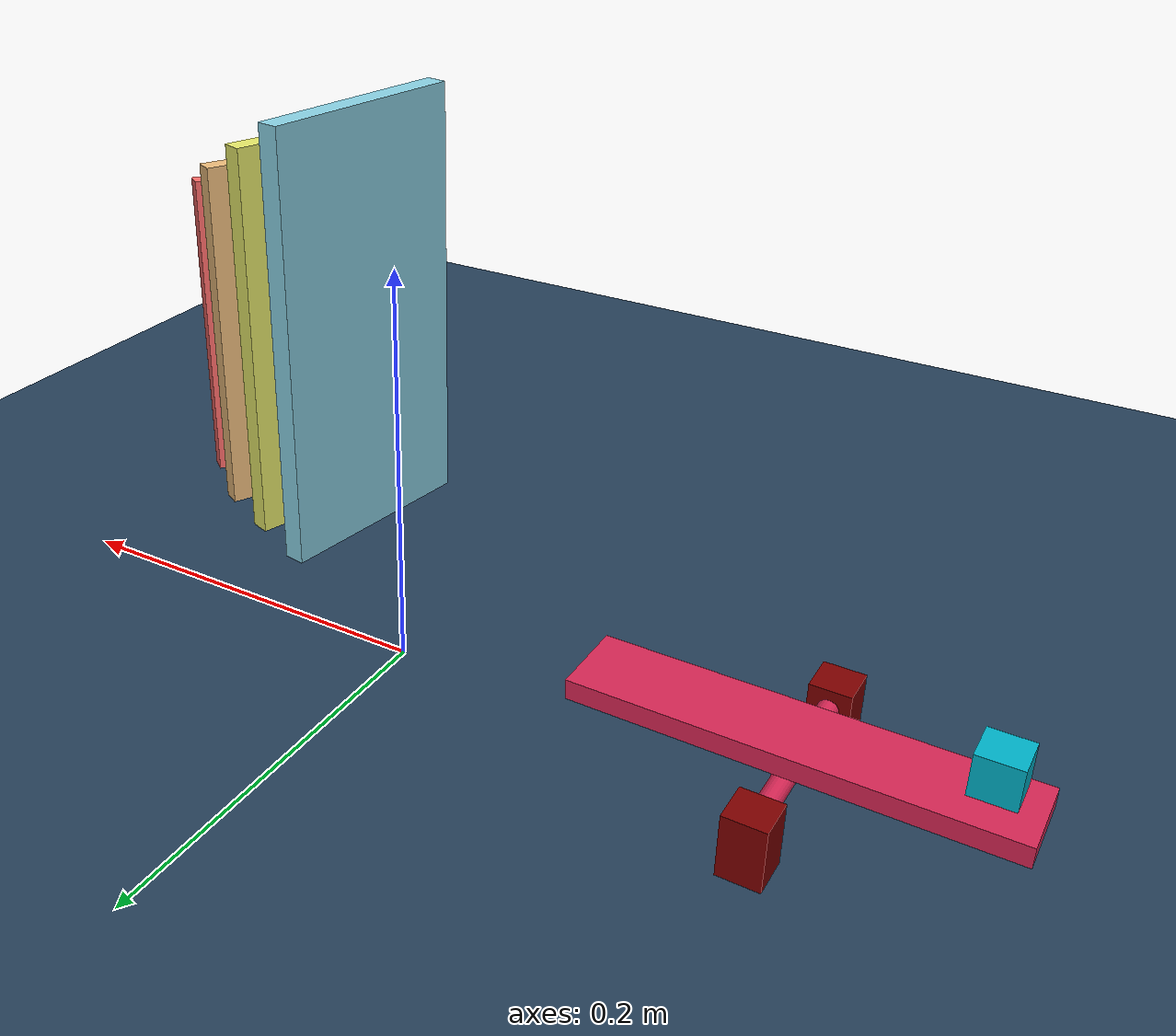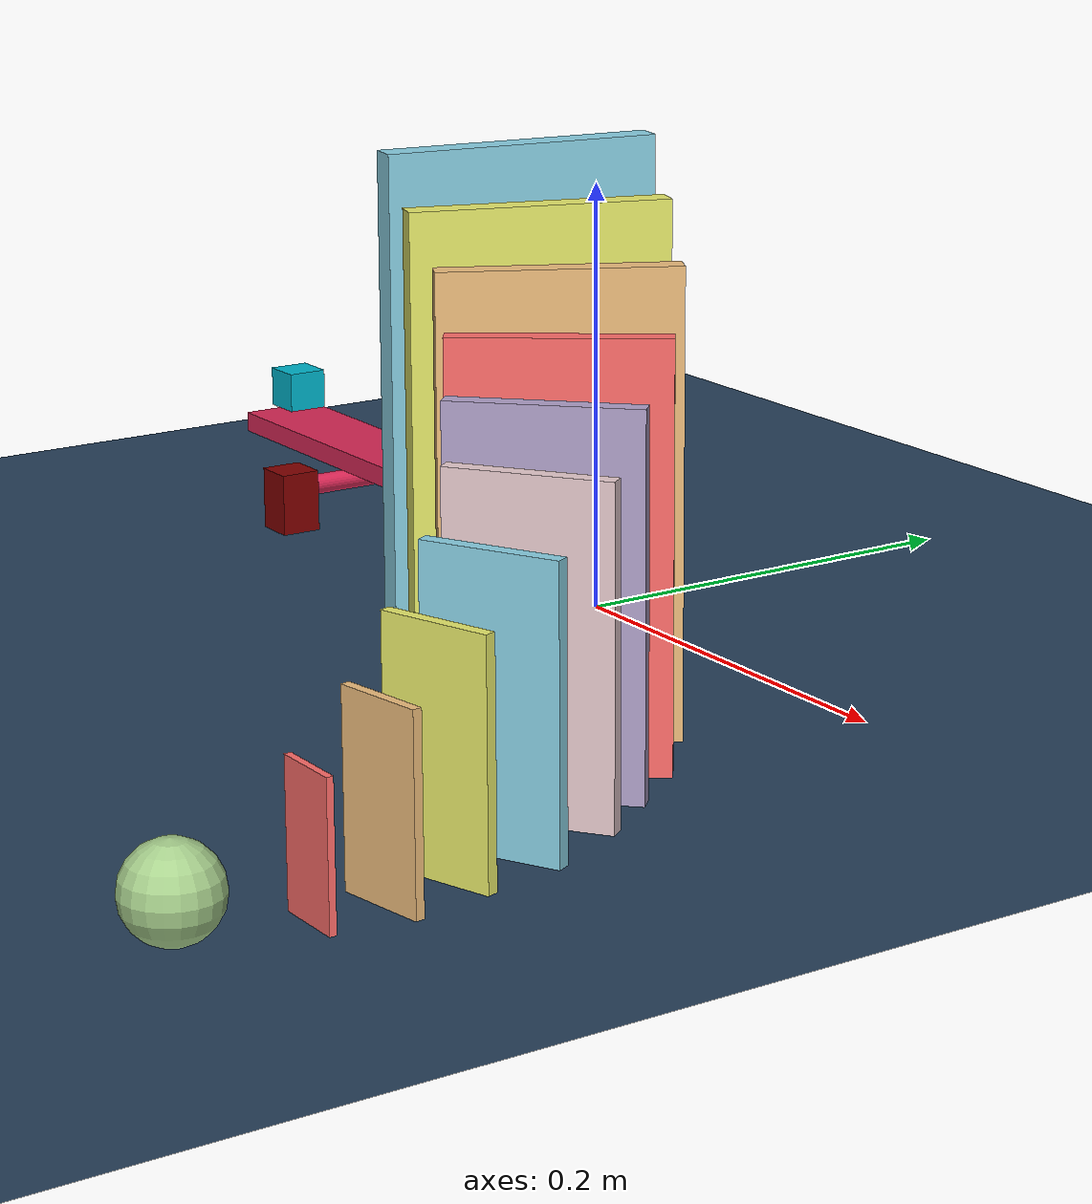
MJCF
<mujoco>
  <compiler meshdir="assets/meshes" texturedir="assets/textures" autolimits="true"/>

  <asset>
    <!-- light  -->
    <texture type="skybox" builtin="gradient" rgb1=".3 .5 .7" rgb2="0 0 0" width="32" height="512"/>
    <!-- floor  -->
    <texture  name="grid" type="2d" builtin="checker" width="512" height="512" rgb1=".1 .2 .3" rgb2=".2 .3 .4"/>
    <material name="grid" texture="grid" texrepeat="1 1" texuniform="true" reflectance=".2"/>

  </asset>

  <default>

        <!-- Domino -->
        <default class="domino">
          <geom   type="box"  friction="1" />
        </default>

        <!-- Ball -->
        <default class="seasaw_mount">
          <geom  type="box" size="0.01 0.01 0.03"/>
        </default>

        <!-- Ball -->
        <default class="ball">
          <geom   type="sphere"   />
        </default>

        <!-- Box -->
        <default class="Box">
          <geom   type="box"  friction="1" />
        </default>

  </default>

  <worldbody>
    <light name="spotlight" mode="targetbodycom" target="seasaw" diffuse=".8 .8 .8" specular="0.3 0.3 0.3" pos="0 -6 4" cutoff="30"/>
    <!-- floor  -->
    <geom  type="plane" size="3 3 .01" material="grid"/>
    <!-- camera  -->
    <body pos="0 0 1" >
      <camera name="traking_camera"  mode="targetbody"/>
    </body>

        <body pos="0.25 -0.35 0.02" euler="0 0 0">
          <joint type="free" />
          <geom class="ball" size="0.02" rgba="0.65625 0.8125 0.55078125 1"/>
        </body>

        <body pos="0.26 -0.3 0.03" euler="0 0 -90.0">

      <joint type="free"   />

          <geom class="domino" size="0.0015 0.015 0.03" rgba="0.99609375 0.42578125 0.4140625 1"/>
        </body>

        <body pos="0.26 -0.27 0.04" euler="0 0 -81.0">

      <joint type="free"   />

          <geom class="domino" size="0.002 0.02 0.04" rgba="0.93359375 0.7421875 0.48828125 1"/>
        </body>

        <body pos="0.25 -0.24 0.05" euler="0 0 -72.0">

      <joint type="free"   />

          <geom class="domino" size="0.0025 0.025 0.05" rgba="0.91015625 0.921875 0.41796875 1"/>
        </body>

        <body pos="0.24 -0.21 0.06" euler="0 0 -63.0">

      <joint type="free"   />

          <geom class="domino" size="0.003 0.03 0.06" rgba="0.54296875 0.82421875 0.8984375 1"/>
        </body>

        <body pos="0.22 -0.18 0.07" euler="0 0 -54.0">

      <joint type="free"   />

          <geom class="domino" size="0.0035 0.035 0.07" rgba="0.91015625 0.80078125 0.8125 1"/>
        </body>

        <body pos="0.2 -0.16 0.08" euler="0 0 -45.0">

      <joint type="free"   />

          <geom class="domino" size="0.004 0.04 0.08" rgba="0.69140625 0.6328125 0.7890625 1"/>
        </body>

        <body pos="0.18 -0.14 0.09" euler="0 0 -36.0">

      <joint type="free"   />

          <geom class="domino" size="0.0045 0.045 0.09" rgba="0.99609375 0.42578125 0.4140625 1"/>
        </body>

        <body pos="0.15 -0.12 0.1" euler="0 0 -27.0">

      <joint type="free"   />

          <geom class="domino" size="0.005 0.05 0.1" rgba="0.93359375 0.7421875 0.48828125 1"/>
        </body>

        <body pos="0.12 -0.11 0.11" euler="0 0 -18.0">

      <joint type="free"   />

          <geom class="domino" size="0.0055 0.055 0.11" rgba="0.91015625 0.921875 0.41796875 1"/>
        </body>

        <body pos="0.09 -0.1 0.12" euler="0 0 -9.0">

      <joint type="free"   />

          <geom class="domino" size="0.006 0.06 0.12" rgba="0.54296875 0.82421875 0.8984375 1"/>
        </body>

        <body name="seasaw" pos="-0.2 0.0 0" euler="0 0 0">

		<geom class="seasaw_mount" pos="0 0.05 0" rgba="0.5 0.0 0.0 1"/>
		<geom class="seasaw_mount" pos="0 -0.05 0" rgba="0.5 0.0 0.0 1"/>
      <body>

    <joint type="hinge"  axis="0 1 0"  pos= "0 0 0.02"    />

        <geom type="cylinder" size="0.005 0.05" pos="0 0 0.02" euler="90 0 0" rgba="0.84765625 0.15234375 0.3359375 1"/>
        <geom type="box" size="0.1 0.02 0.005" pos="0 0 0.03" friction="1" mass="0.1" rgba="0.84765625 0.15234375 0.3359375 1"/>
      </body>

        </body>

        <body pos="-0.28 0.0 0.05" euler="0 0 0" >

          <joint type="free" />
          <geom class="Box" size="0.01 0.01 0.01" mass="0.01" rgba="0.0 0.70703125 0.796875 1"/>
        </body>

  </worldbody>

  <keyframe>
    <key name="one" qvel="0 1 0 0 0 0 0 0 0 0 0 0 0 0 0 0 0 0 0 0 0 0 0 0 0 0 0 0 0 0 0 0 0 0 0 0 0 0 0 0 0 0 0 0 0 0 0 0 0 0 0 0 0 0 0 0 0 0 0 0 0 0 0 0 0 0 0 0 0 0 0 0 0" />
  </keyframe>

</mujoco>
